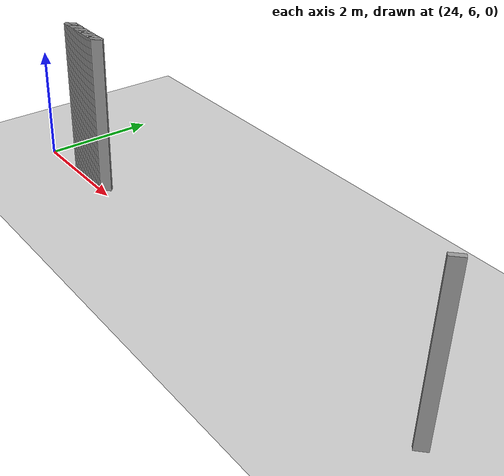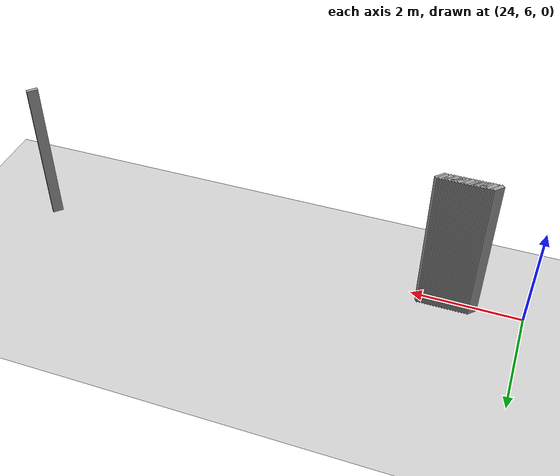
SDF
<sdf version="1.5">
 <world name="default">
  <include><uri>model://ground_plane</uri></include>
  <include><uri>model://sun</uri></include>
  <model name="grey_wall_4333">
   <static>1</static>
   <link name="link">
    <pose>24.9 6.1  1.4 0 0 -0.785398163397</pose>
    <collision name="collision"><geometry><box><size>0.0707106781187 .2  2.8</size></box></geometry></collision>
    <visual name="visual">
     <cast_shadows>0</cast_shadows>
     <geometry><box><size>0.0707106781187 .2  2.8</size></box></geometry>
     <material>
      <script>
       <uri>model://grey_wall/materials/scripts</uri>
       <uri>model://grey_wall/materials/textures</uri>
       <name>vrc/grey_wall</name>
      </script>
     </material>
    </visual>
   </link>
  </model>
  <model name="grey_wall_4334">
   <static>1</static>
   <link name="link">
    <pose>24.95 6.1  1.4 0 0 -0.785398163397</pose>
    <collision name="collision"><geometry><box><size>0.0707106781187 .2  2.8</size></box></geometry></collision>
    <visual name="visual">
     <cast_shadows>0</cast_shadows>
     <geometry><box><size>0.0707106781187 .2  2.8</size></box></geometry>
     <material>
      <script>
       <uri>model://grey_wall/materials/scripts</uri>
       <uri>model://grey_wall/materials/textures</uri>
       <name>vrc/grey_wall</name>
      </script>
     </material>
    </visual>
   </link>
  </model>
  <model name="grey_wall_4335">
   <static>1</static>
   <link name="link">
    <pose>25.0 6.1  1.4 0 0 -0.785398163397</pose>
    <collision name="collision"><geometry><box><size>0.0707106781187 .2  2.8</size></box></geometry></collision>
    <visual name="visual">
     <cast_shadows>0</cast_shadows>
     <geometry><box><size>0.0707106781187 .2  2.8</size></box></geometry>
     <material>
      <script>
       <uri>model://grey_wall/materials/scripts</uri>
       <uri>model://grey_wall/materials/textures</uri>
       <name>vrc/grey_wall</name>
      </script>
     </material>
    </visual>
   </link>
  </model>
  <model name="grey_wall_4336">
   <static>1</static>
   <link name="link">
    <pose>25.05 6.1  1.4 0 0 -0.785398163397</pose>
    <collision name="collision"><geometry><box><size>0.0707106781187 .2  2.8</size></box></geometry></collision>
    <visual name="visual">
     <cast_shadows>0</cast_shadows>
     <geometry><box><size>0.0707106781187 .2  2.8</size></box></geometry>
     <material>
      <script>
       <uri>model://grey_wall/materials/scripts</uri>
       <uri>model://grey_wall/materials/textures</uri>
       <name>vrc/grey_wall</name>
      </script>
     </material>
    </visual>
   </link>
  </model>
  <model name="grey_wall_4337">
   <static>1</static>
   <link name="link">
    <pose>25.1 6.1  1.4 0 0 -0.785398163397</pose>
    <collision name="collision"><geometry><box><size>0.0707106781187 .2  2.8</size></box></geometry></collision>
    <visual name="visual">
     <cast_shadows>0</cast_shadows>
     <geometry><box><size>0.0707106781187 .2  2.8</size></box></geometry>
     <material>
      <script>
       <uri>model://grey_wall/materials/scripts</uri>
       <uri>model://grey_wall/materials/textures</uri>
       <name>vrc/grey_wall</name>
      </script>
     </material>
    </visual>
   </link>
  </model>
  <model name="grey_wall_4338">
   <static>1</static>
   <link name="link">
    <pose>25.15 6.1  1.4 0 0 -0.785398163397</pose>
    <collision name="collision"><geometry><box><size>0.0707106781187 .2  2.8</size></box></geometry></collision>
    <visual name="visual">
     <cast_shadows>0</cast_shadows>
     <geometry><box><size>0.0707106781187 .2  2.8</size></box></geometry>
     <material>
      <script>
       <uri>model://grey_wall/materials/scripts</uri>
       <uri>model://grey_wall/materials/textures</uri>
       <name>vrc/grey_wall</name>
      </script>
     </material>
    </visual>
   </link>
  </model>
  <model name="grey_wall_4339">
   <static>1</static>
   <link name="link">
    <pose>25.2 6.1  1.4 0 0 -0.785398163397</pose>
    <collision name="collision"><geometry><box><size>0.0707106781187 .2  2.8</size></box></geometry></collision>
    <visual name="visual">
     <cast_shadows>0</cast_shadows>
     <geometry><box><size>0.0707106781187 .2  2.8</size></box></geometry>
     <material>
      <script>
       <uri>model://grey_wall/materials/scripts</uri>
       <uri>model://grey_wall/materials/textures</uri>
       <name>vrc/grey_wall</name>
      </script>
     </material>
    </visual>
   </link>
  </model>
  <model name="grey_wall_4340">
   <static>1</static>
   <link name="link">
    <pose>25.25 6.1  1.4 0 0 -0.785398163397</pose>
    <collision name="collision"><geometry><box><size>0.0707106781187 .2  2.8</size></box></geometry></collision>
    <visual name="visual">
     <cast_shadows>0</cast_shadows>
     <geometry><box><size>0.0707106781187 .2  2.8</size></box></geometry>
     <material>
      <script>
       <uri>model://grey_wall/materials/scripts</uri>
       <uri>model://grey_wall/materials/textures</uri>
       <name>vrc/grey_wall</name>
      </script>
     </material>
    </visual>
   </link>
  </model>
  <model name="grey_wall_4341">
   <static>1</static>
   <link name="link">
    <pose>25.3 6.1  1.4 0 0 -0.785398163397</pose>
    <collision name="collision"><geometry><box><size>0.0707106781187 .2  2.8</size></box></geometry></collision>
    <visual name="visual">
     <cast_shadows>0</cast_shadows>
     <geometry><box><size>0.0707106781187 .2  2.8</size></box></geometry>
     <material>
      <script>
       <uri>model://grey_wall/materials/scripts</uri>
       <uri>model://grey_wall/materials/textures</uri>
       <name>vrc/grey_wall</name>
      </script>
     </material>
    </visual>
   </link>
  </model>
  <model name="grey_wall_4342">
   <static>1</static>
   <link name="link">
    <pose>25.35 6.1  1.4 0 0 -0.785398163397</pose>
    <collision name="collision"><geometry><box><size>0.0707106781187 .2  2.8</size></box></geometry></collision>
    <visual name="visual">
     <cast_shadows>0</cast_shadows>
     <geometry><box><size>0.0707106781187 .2  2.8</size></box></geometry>
     <material>
      <script>
       <uri>model://grey_wall/materials/scripts</uri>
       <uri>model://grey_wall/materials/textures</uri>
       <name>vrc/grey_wall</name>
      </script>
     </material>
    </visual>
   </link>
  </model>
  <model name="grey_wall_4343">
   <static>1</static>
   <link name="link">
    <pose>25.4 6.1  1.4 0 0 -0.785398163397</pose>
    <collision name="collision"><geometry><box><size>0.0707106781187 .2  2.8</size></box></geometry></collision>
    <visual name="visual">
     <cast_shadows>0</cast_shadows>
     <geometry><box><size>0.0707106781187 .2  2.8</size></box></geometry>
     <material>
      <script>
       <uri>model://grey_wall/materials/scripts</uri>
       <uri>model://grey_wall/materials/textures</uri>
       <name>vrc/grey_wall</name>
      </script>
     </material>
    </visual>
   </link>
  </model>
  <model name="grey_wall_4344">
   <static>1</static>
   <link name="link">
    <pose>25.45 6.1  1.4 0 0 -0.785398163397</pose>
    <collision name="collision"><geometry><box><size>0.0707106781187 .2  2.8</size></box></geometry></collision>
    <visual name="visual">
     <cast_shadows>0</cast_shadows>
     <geometry><box><size>0.0707106781187 .2  2.8</size></box></geometry>
     <material>
      <script>
       <uri>model://grey_wall/materials/scripts</uri>
       <uri>model://grey_wall/materials/textures</uri>
       <name>vrc/grey_wall</name>
      </script>
     </material>
    </visual>
   </link>
  </model>
  <model name="grey_wall_4345">
   <static>1</static>
   <link name="link">
    <pose>25.5 6.1  1.4 0 0 -0.785398163397</pose>
    <collision name="collision"><geometry><box><size>0.0707106781187 .2  2.8</size></box></geometry></collision>
    <visual name="visual">
     <cast_shadows>0</cast_shadows>
     <geometry><box><size>0.0707106781187 .2  2.8</size></box></geometry>
     <material>
      <script>
       <uri>model://grey_wall/materials/scripts</uri>
       <uri>model://grey_wall/materials/textures</uri>
       <name>vrc/grey_wall</name>
      </script>
     </material>
    </visual>
   </link>
  </model>
  <model name="grey_wall_4346">
   <static>1</static>
   <link name="link">
    <pose>25.55 6.1  1.4 0 0 -0.785398163397</pose>
    <collision name="collision"><geometry><box><size>0.0707106781187 .2  2.8</size></box></geometry></collision>
    <visual name="visual">
     <cast_shadows>0</cast_shadows>
     <geometry><box><size>0.0707106781187 .2  2.8</size></box></geometry>
     <material>
      <script>
       <uri>model://grey_wall/materials/scripts</uri>
       <uri>model://grey_wall/materials/textures</uri>
       <name>vrc/grey_wall</name>
      </script>
     </material>
    </visual>
   </link>
  </model>
  <model name="grey_wall_4347">
   <static>1</static>
   <link name="link">
    <pose>25.6 6.1  1.4 0 0 -0.785398163397</pose>
    <collision name="collision"><geometry><box><size>0.0707106781187 .2  2.8</size></box></geometry></collision>
    <visual name="visual">
     <cast_shadows>0</cast_shadows>
     <geometry><box><size>0.0707106781187 .2  2.8</size></box></geometry>
     <material>
      <script>
       <uri>model://grey_wall/materials/scripts</uri>
       <uri>model://grey_wall/materials/textures</uri>
       <name>vrc/grey_wall</name>
      </script>
     </material>
    </visual>
   </link>
  </model>
  <model name="grey_wall_4348">
   <static>1</static>
   <link name="link">
    <pose>25.65 6.1  1.4 0 0 -0.785398163397</pose>
    <collision name="collision"><geometry><box><size>0.0707106781187 .2  2.8</size></box></geometry></collision>
    <visual name="visual">
     <cast_shadows>0</cast_shadows>
     <geometry><box><size>0.0707106781187 .2  2.8</size></box></geometry>
     <material>
      <script>
       <uri>model://grey_wall/materials/scripts</uri>
       <uri>model://grey_wall/materials/textures</uri>
       <name>vrc/grey_wall</name>
      </script>
     </material>
    </visual>
   </link>
  </model>
  <model name="grey_wall_4349">
   <static>1</static>
   <link name="link">
    <pose>25.7 6.1  1.4 0 0 -0.785398163397</pose>
    <collision name="collision"><geometry><box><size>0.0707106781187 .2  2.8</size></box></geometry></collision>
    <visual name="visual">
     <cast_shadows>0</cast_shadows>
     <geometry><box><size>0.0707106781187 .2  2.8</size></box></geometry>
     <material>
      <script>
       <uri>model://grey_wall/materials/scripts</uri>
       <uri>model://grey_wall/materials/textures</uri>
       <name>vrc/grey_wall</name>
      </script>
     </material>
    </visual>
   </link>
  </model>
  <model name="grey_wall_4350">
   <static>1</static>
   <link name="link">
    <pose>25.75 6.1  1.4 0 0 -0.785398163397</pose>
    <collision name="collision"><geometry><box><size>0.0707106781187 .2  2.8</size></box></geometry></collision>
    <visual name="visual">
     <cast_shadows>0</cast_shadows>
     <geometry><box><size>0.0707106781187 .2  2.8</size></box></geometry>
     <material>
      <script>
       <uri>model://grey_wall/materials/scripts</uri>
       <uri>model://grey_wall/materials/textures</uri>
       <name>vrc/grey_wall</name>
      </script>
     </material>
    </visual>
   </link>
  </model>
  <model name="grey_wall_4351">
   <static>1</static>
   <link name="link">
    <pose>25.8 6.1  1.4 0 0 -0.785398163397</pose>
    <collision name="collision"><geometry><box><size>0.0707106781187 .2  2.8</size></box></geometry></collision>
    <visual name="visual">
     <cast_shadows>0</cast_shadows>
     <geometry><box><size>0.0707106781187 .2  2.8</size></box></geometry>
     <material>
      <script>
       <uri>model://grey_wall/materials/scripts</uri>
       <uri>model://grey_wall/materials/textures</uri>
       <name>vrc/grey_wall</name>
      </script>
     </material>
    </visual>
   </link>
  </model>
  <model name="grey_wall_4352">
   <static>1</static>
   <link name="link">
    <pose>33.15 6.1  1.4 0 0 -0.785398163397</pose>
    <collision name="collision"><geometry><box><size>0.0707106781187 .2  2.8</size></box></geometry></collision>
    <visual name="visual">
     <cast_shadows>0</cast_shadows>
     <geometry><box><size>0.0707106781187 .2  2.8</size></box></geometry>
     <material>
      <script>
       <uri>model://grey_wall/materials/scripts</uri>
       <uri>model://grey_wall/materials/textures</uri>
       <name>vrc/grey_wall</name>
      </script>
     </material>
    </visual>
   </link>
  </model>
 </world>
</sdf>
